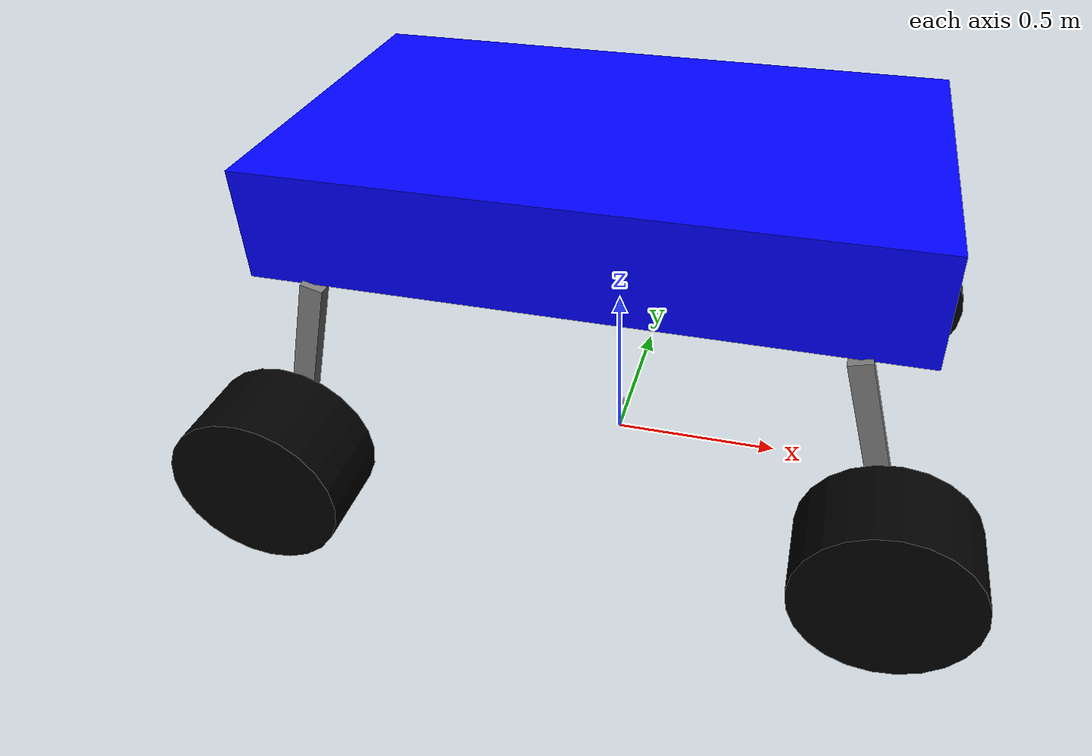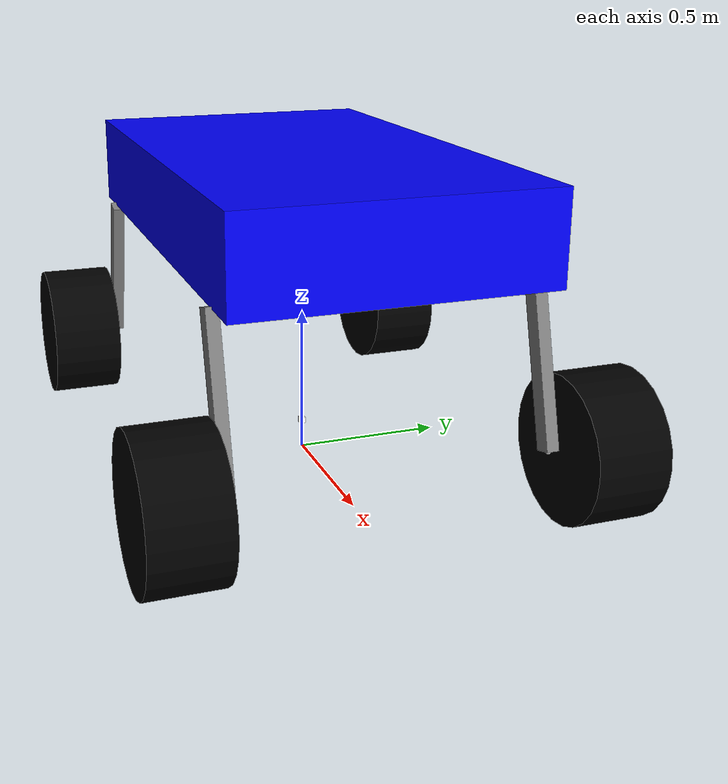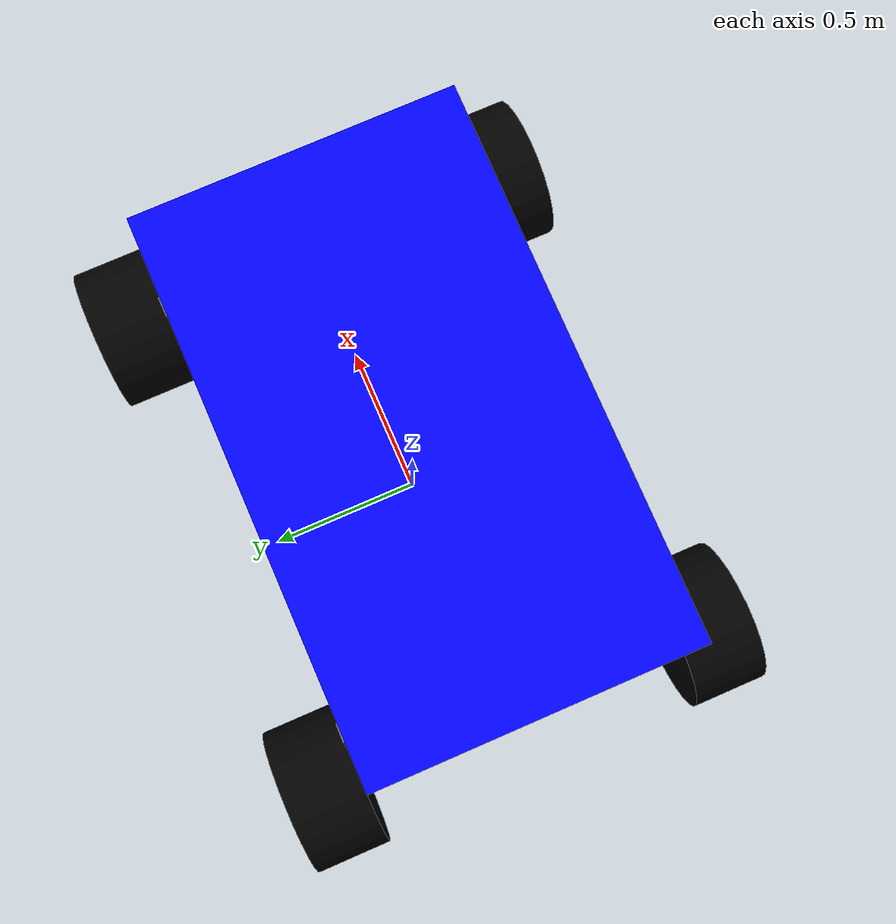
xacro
<?xml version="1.0"?>
<robot name="ackerman_drive_robot" xmlns:xacro="http://www.ros.org/wiki/xacro">

  <!-- Properties -->
  <!-- Define constant PI -->
  <xacro:property name="PI" value="3.1415926535897931"/>
  <!-- Base properties: mass, dimensions -->
  <xacro:property name="base_mass" value="0.0001"/> <!--  CHANGE Body mass (kg) -->
  <xacro:property name="base_length" value="1.718"/> <!-- Body length (m) -->
  <xacro:property name="base_width" value="1.0"/> <!-- Body width (m) -->
  <xacro:property name="base_height" value="0.3"/> <!-- Body height (m) -->
  <!-- Wheelbase is the distance between the front and rear axles -->
  <xacro:property name="wheelbase" value="1.364"/> <!-- Distance between front and rear axles (m) -->
  <!-- Wheel properties -->
  <xacro:property name="wheel_mass" value="0.0001"/>
  <xacro:property name="wheel_len" value="0.241"/> <!-- Wheel width (m) -->
  <xacro:property name="wheel_radius" value="0.235"/> <!-- Wheel radius (m) -->
  <!-- Leg properties -->
  <xacro:property name="leg_length_x" value="0.06"/> <!-- Leg dimensions (m) -->
  <xacro:property name="leg_length_y" value="0.040"/>
  <xacro:property name="leg_length_z" value="0.530"/>
  <xacro:property name="leg_angle" value="${radians(15)}"/> <!-- Leg tilt angle -->
  <xacro:property name="leg_mass" value="0.00001"/>

  <!-- Macro for Legs with Wheels -->
  <xacro:macro name="leg_with_wheel" params="prefix leg_origin_xyz leg_origin_rpy wheel_joint_type is_front_wheel">
    <!-- Leg Link -->
    <link name="${prefix}_leg">
      <inertial>
        <origin xyz="0 0 ${-leg_length_z/2}" rpy="0 0 0"/>
        <mass value="${leg_mass}"/>
        <inertia
          ixx="${(1/12)*leg_mass*(leg_length_y*leg_length_y + leg_length_z*leg_length_z)}"
          ixy="0.0" ixz="0.0"
          iyy="${(1/12)*leg_mass*(leg_length_x*leg_length_x + leg_length_z*leg_length_z)}"
          iyz="0.0"
          izz="${(1/12)*leg_mass*(leg_length_x*leg_length_x + leg_length_y*leg_length_y)}"/>
      </inertial>
      <visual>
        <origin xyz="0 0 ${-leg_length_z/2}" rpy="0 0 0"/>
        <geometry>
          <box size="${leg_length_x} ${leg_length_y} ${leg_length_z}"/>
        </geometry>
        <material name="gray">
          <color rgba="0.5 0.5 0.5 1"/> <!-- Gray for visibility -->
        </material>
      </visual>
      <collision>
        <origin xyz="0 0 ${-leg_length_z/2}" rpy="0 0 0"/>
        <geometry>
          <box size="${leg_length_x} ${leg_length_y} ${leg_length_z}"/>
        </geometry>
      </collision>
    </link>
    <!-- Fixed joint to attach the leg to the body link -->
    <joint name="${prefix}_leg_joint" type="fixed">
      <parent link="body_link"/>
      <child link="${prefix}_leg"/>
      <origin xyz="${leg_origin_xyz}" rpy="${leg_origin_rpy}"/>
    </joint>

    <!-- Wheel Link -->
    <link name="${prefix}_wheel">
      <inertial>
        <!-- Wheel inertial parameters: rotated so that cylinder axis is along the proper direction -->
        <origin xyz="0 0 0" rpy="${PI/2} 0 ${PI/2}"/>
        <mass value="${wheel_mass}"/>
        <inertia
          ixx="${(1/12)*wheel_mass*(3*wheel_radius*wheel_radius + wheel_len*wheel_len)}"
          ixy="0.0" ixz="0.0"
          iyy="${(1/12)*wheel_mass*(3*wheel_radius*wheel_radius + wheel_len*wheel_len)}"
          iyz="0.0"
          izz="${(1/2)*wheel_mass*wheel_radius*wheel_radius}"/>
      </inertial>
      <visual>
        <origin xyz="0 0 0" rpy="${PI/2} 0 ${PI/2}"/>
        <geometry>
          <cylinder length="${wheel_len}" radius="${wheel_radius}"/>
        </geometry>
        <material name="black">
          <color rgba="0 0 0 1"/> <!-- Black for visibility -->
        </material>
      </visual>
      <collision>
        <origin xyz="0 0 0" rpy="${PI/2} 0 ${PI/2} "/>
        <geometry>
          <cylinder length="${wheel_len}" radius="${wheel_radius}"/>
        </geometry>
      </collision>
    </link>

    <xacro:if value="${is_front_wheel}">

    <link name="${prefix}_steering_link">
      <!-- Inertial properties: Minimal mass and inertia since this is a lightweight steering component. -->
      <inertial>
        <mass value="0.1"/>
        <!-- Simple inertia values (small, uniform) for simulation stability. -->
        <inertia ixx="0.001" ixy="0.0" ixz="0.0" iyy="0.001" iyz="0.0" izz="0.001"/>
      </inertial>
      <visual>
        <origin xyz="0 0 0" rpy="${PI/2} 0 ${PI/2}"/>
        <geometry>
          <cylinder length="0.01" radius="0.01"/>
        </geometry>
        <material name="invisible"/>
      </visual>
    </link>

      <!-- FRONT WHEELS-->
      <!-- Steering Joint: Allows the steering link to rotate (steer) around the vertical axis. -->
      <joint name="${prefix}_steering_joint" type="revolute">
        <parent link="${prefix}_leg"/> <!-- Parent is the leg link. -->
        <child link="${prefix}_steering_link"/>  <!-- Child is the steering link. -->
        <origin xyz="0 0 ${-leg_length_z}" rpy="0 ${leg_angle} 0"/> <!-- Positioned at the bottom of the leg (z offset). -->
        <axis xyz="0 0 1"/> <!-- Rotation axis is vertical (z-axis) for steering left/right. -->
        <!-- Limits: Steering angle range. effort, and velocity constraints. -->
        <limit lower="-0.4" upper="0.4" effort="100000.0" velocity="10.0"/>
        <dynamics damping="0.2"/>
      </joint>

      <!-- Joint connecting steering and the wheel -->
      <joint name="${prefix}_wheel_joint" type="${wheel_joint_type}">
        <parent link="${prefix}_steering_link"/>
        <child link="${prefix}_wheel"/>
        <xacro:if value="${prefix == 'fl'}">
          <origin xyz="0 0.15 -0.0" rpy="0 0 ${PI/2}"/>  <!-- WRONG   ${-leg_angle} -->
        </xacro:if>
        <xacro:if value="${prefix == 'fr'}">
          <origin xyz="0 -0.15 -0.0" rpy="0 0 ${PI/2}"/> <!-- WRONG   ${-leg_angle}-->
        </xacro:if>
        <axis xyz="1 0 0"/>
        <dynamics damping="0.2"/>
        <!-- Apply limits only if the joint is revolute -->
        <xacro:if value="${wheel_joint_type == 'revolute'}">
          <limit lower="-0.5" upper="0.5" effort="100.0" velocity="10.0"/>
        </xacro:if>
      </joint>

    </xacro:if>

    <!-- Back Wheels: No steering; wheel is directly attached to the leg. -->
  <xacro:unless value="${is_front_wheel}">
    <joint name="${prefix}_wheel_joint" type="${wheel_joint_type}">
      <parent link="${prefix}_leg"/>
      <child link="${prefix}_wheel"/>
      <xacro:if value="${prefix == 'bl'}">
        <origin xyz="0 0.15 ${-leg_length_z}" rpy="0 0 ${PI/2}"/>
      </xacro:if>
      <xacro:if value="${prefix == 'br'}">
        <origin xyz="0 -0.15 ${-leg_length_z}" rpy="0 0 ${PI/2}"/>
      </xacro:if>
      <axis xyz="1 0 0"/>
      <dynamics damping="0.01"/>
      <!-- If the joint is revolute, then apply limits -->
      <xacro:if value="${wheel_joint_type == 'revolute'}">

      </xacro:if>
    </joint>
  </xacro:unless>

  </xacro:macro>

  <!-- Base Link (World Reference) -->
  <!-- The base_link serves as the fixed reference frame for the robot model -->
  <link name="base_link"/>

  <!-- BASE_FOOTPRINT LINK -->

  <joint name="base_footprint_joint" type="fixed">
      <parent link="base_link"/>
      <child link="base_footprint"/>
      <origin xyz="0 0 0" rpy="0 0 0"/>
  </joint>

  <link name="base_footprint">
  </link>

  <!-- Body Link -->
  <link name="body_link">
    <inertial>
      <origin xyz="0 0 0" rpy="0 0 0"/>
      <mass value="${base_mass}"/>
      <inertia
        ixx="${(1/12)*base_mass*(base_width*base_width + base_height*base_height)}"
        ixy="0.0" ixz="0.0"
        iyy="${(1/12)*base_mass*(base_length*base_length + base_height*base_height)}"
        iyz="0.0"
        izz="${(1/12)*base_mass*(base_length*base_length + base_width*base_width)}"/>
    </inertial>
    <visual>
      <origin xyz="0 0 0" rpy="0 0 0"/>
      <geometry>
        <box size="${base_length} ${base_width} ${base_height}"/>
      </geometry>
      <material name="blue">
        <color rgba="0 0 1 1"/> <!-- Blue for visibility -->
      </material>
    </visual>
    <collision>
      <origin xyz="0 0 0" rpy="0 0 0"/>
      <geometry>
        <box size="${base_length} ${base_width} ${base_height}"/>
      </geometry>
    </collision>
  </link>

 <!-- imu -->
  <link name="imu_link">
    <inertial>
      <mass value="0.1"/>
      <inertia ixx="0.001" ixy="0.0" ixz="0.0" iyy="0.001" iyz="0.0" izz="0.001"/>
    </inertial>
    <visual>
      <geometry>
        <box size="0.02 0.02 0.02"/>
      </geometry>
      <material name="white">
        <color rgba="1 1 1 1"/>
      </material>
    </visual>
  </link>
  <joint name="imu_joint" type="fixed">
    <parent link="base_link"/>
    <child link="imu_link"/>
    <origin xyz="0 0 0.1" rpy="0 0 0"/> <!--Rotate 180 degrees around x-axis to flip z-axis-->
  </joint>

  <link name="gps_link">
    <inertial>
      <mass>0.1</mass>
      <inertia>
        <ixx>0.001</ixx>
        <iyy>0.001</iyy>
        <izz>0.001</izz>
      </inertia>
    </inertial>
  </link>

  <joint name="gps_joint" type="fixed">
    <parent link="base_link"/>
    <child link="gps_link"/>
    <origin xyz="0 0 0.2" rpy="0 0 3.14159"/> <!-- Adjust height as needed -->
  </joint>

  <!-- Fixed joint connecting the base_link to the body_link -->
  <joint name="body_joint" type="fixed">
    <parent link="base_link"/>
    <child link="body_link"/>
    <origin xyz="0 0 ${base_height/2 + leg_length_z + wheel_radius}" rpy="0 0 0"/>
  </joint>

  <!-- Instantiate Legs with Wheels -->
  <!-- Front Left Leg with Wheel -->
  <xacro:leg_with_wheel prefix="fl" leg_origin_xyz="${wheelbase/2} ${base_width/2} ${-base_height/2}" leg_origin_rpy="0 ${-leg_angle} 0" wheel_joint_type="continuous" is_front_wheel="true"/>
  <!-- Front Right Leg with Wheel -->
  <xacro:leg_with_wheel prefix="fr" leg_origin_xyz="${wheelbase/2} ${-base_width/2} ${-base_height/2}" leg_origin_rpy="0 ${-leg_angle} 0" wheel_joint_type="continuous" is_front_wheel="true"/>
  <!-- Back Left Leg with Wheel -->
  <xacro:leg_with_wheel prefix="bl" leg_origin_xyz="${-wheelbase/2} ${base_width/2} ${-base_height/2}" leg_origin_rpy="0 ${leg_angle} 0" wheel_joint_type="continuous" is_front_wheel="false"/>
  <!-- Back Right Leg with Wheel -->
  <xacro:leg_with_wheel prefix="br" leg_origin_xyz="${-wheelbase/2} ${-base_width/2} ${-base_height/2}" leg_origin_rpy="0 ${leg_angle} 0" wheel_joint_type="continuous" is_front_wheel="false"/>

  <ros2_control name="GazeboSystem" type="system">
    <hardware>
        <plugin>gz_ros2_control/GazeboSimSystem</plugin>
    </hardware>
    <joint name="fl_steering_joint">
      <command_interface name="position"/>
      <state_interface name="position"/>
      <state_interface name="velocity"/>
    </joint>
    <joint name="fr_steering_joint">
      <command_interface name="position"/>
      <state_interface name="position"/>
      <state_interface name="velocity"/>
    </joint>
    <joint name="bl_wheel_joint">
      <command_interface name="velocity"/>
      <state_interface name="position"/>
      <state_interface name="velocity"/>
    </joint>
    <joint name="br_wheel_joint">
      <command_interface name="velocity"/>
      <state_interface name="position"/>
      <state_interface name="velocity"/>
    </joint>

    <!--To show them in rviz  -->
    <joint name="fl_wheel_joint">
      <command_interface name="velocity"/>
      <state_interface name="position"/>
      <state_interface name="velocity"/>
    </joint>
    <joint name="fr_wheel_joint">
      <command_interface name="velocity"/>
      <state_interface name="position"/>
      <state_interface name="velocity"/>
    </joint>

  </ros2_control>

  <!-- Transmission Elements -->
  <!-- Transmissions map joint commands to actuator commands -->
  <transmission name="fl_steering_trans">
    <type>transmission_interface/SimpleTransmission</type>
    <joint name="fl_steering_joint"/>
    <actuator name="fl_steering_actuator"/>
  </transmission>
  <transmission name="fr_steering_trans">
    <type>transmission_interface/SimpleTransmission</type>
    <joint name="fr_steering_joint"/>
    <actuator name="fr_steering_actuator"/>
  </transmission>
  <transmission name="bl_wheel_trans">
    <type>transmission_interface/SimpleTransmission</type>
    <joint name="bl_wheel_joint"/>
    <actuator name="bl_wheel_actuator"/>
  </transmission>
  <transmission name="br_wheel_trans">
    <type>transmission_interface/SimpleTransmission</type>
    <joint name="br_wheel_joint"/>
    <actuator name="br_wheel_actuator"/>
  </transmission>
  <transmission name="fl_wheel_trans">
    <type>transmission_interface/SimpleTransmission</type>
    <joint name="fl_wheel_joint"/>
    <actuator name="fl_wheel_actuator"/>
  </transmission>
  <transmission name="fr_wheel_trans">
    <type>transmission_interface/SimpleTransmission</type>
    <joint name="fr_wheel_joint"/>
    <actuator name="fr_wheel_actuator"/>
  </transmission>

  <!-- Include Gazebo-specific file -->
  <!-- This file contains additional Gazebo configurations -->
  <xacro:include filename="$(find mobile_robot)/model/robot.gazebo"/>

</robot>
